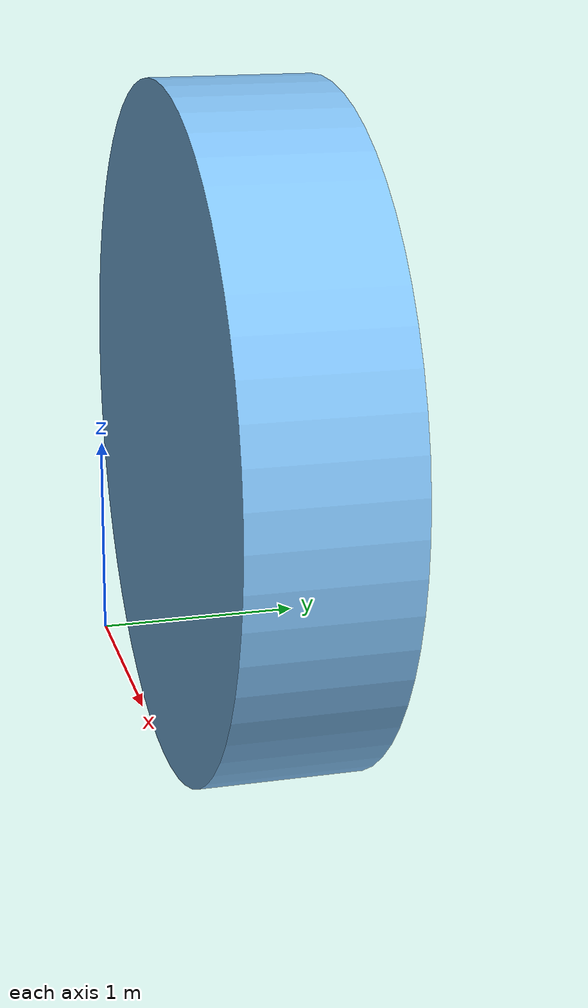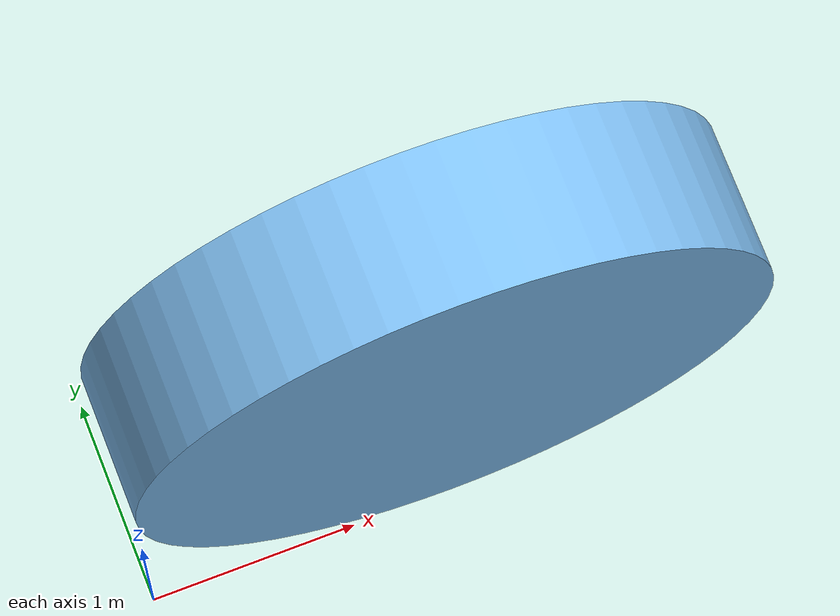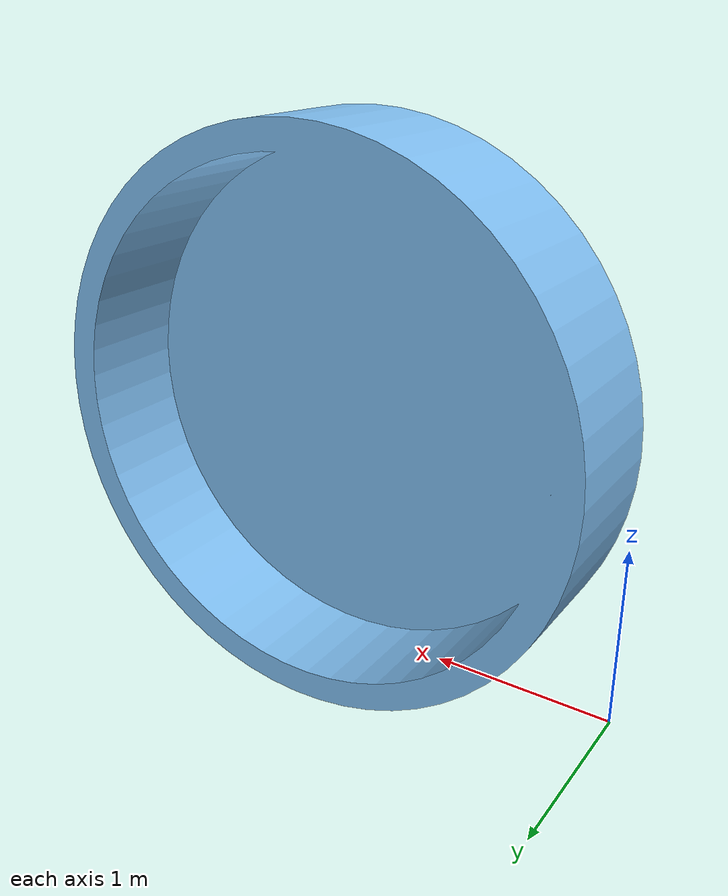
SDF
<?xml version="1.0" ?>
<sdf version="1.5">
  <model name="water_intake_reservoir">
    <static>true</static>
    <link name="link">
      <collision name="collision">
        <geometry>
          <mesh>
            <uri>model://water_intake_reservoir/meshes/water_intake_reservoir.dae</uri>
            <scale>0.002 0.002 0.002</scale>
          </mesh>
        </geometry>
        <surface>
          <friction>
            <ode>
              <mu>100</mu>
              <mu2>50</mu2>
            </ode>
          </friction>
        </surface>
      </collision>
      <visual name="visual">
        <geometry>
          <mesh>
            <uri>model://water_intake_reservoir/meshes/water_intake_reservoir.dae</uri>
            <scale>0.001 0.001 0.001</scale>
          </mesh>
        </geometry>
        <material>
          <script>
            <uri>file://media/materials/scripts/gazebo.material</uri>
            <name>Gazebo/SkyBlue</name>
          </script>
        </material>
      </visual>
    </link>
  </model>
</sdf>
